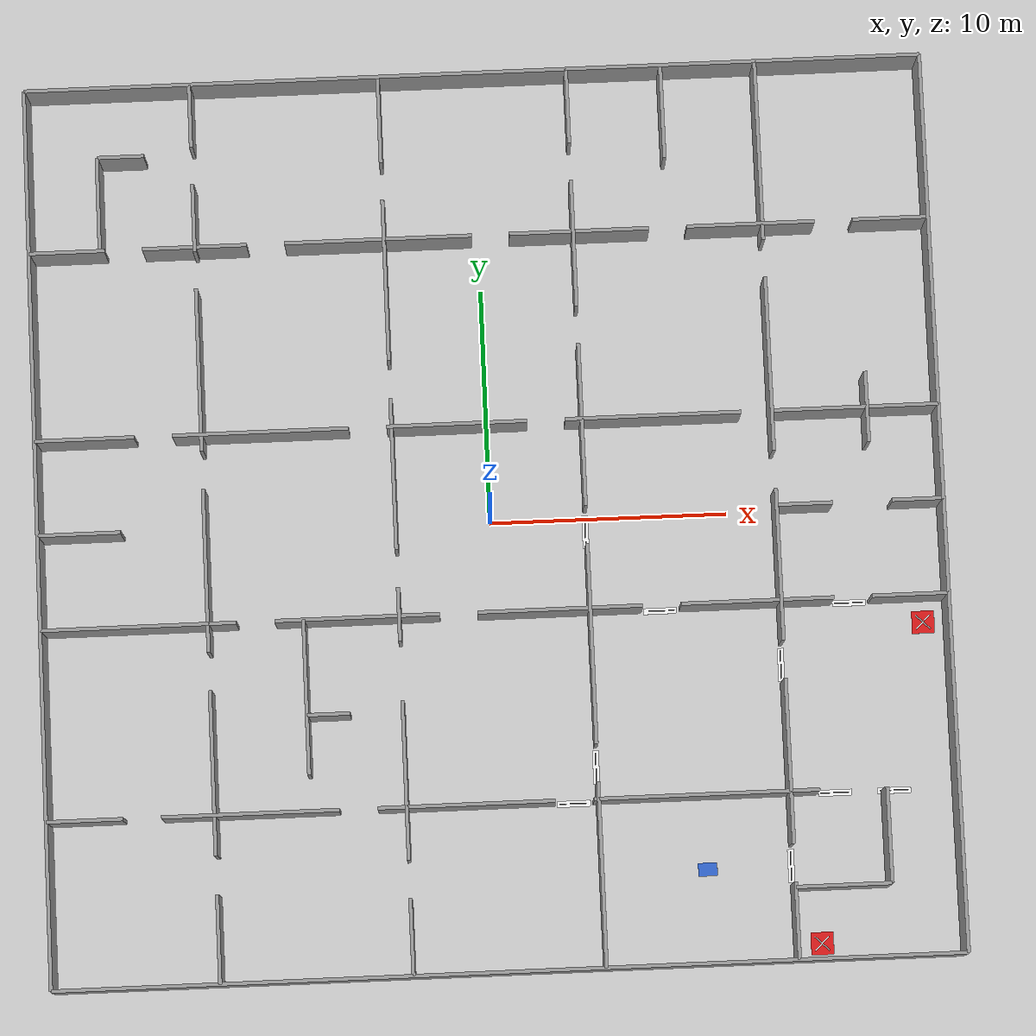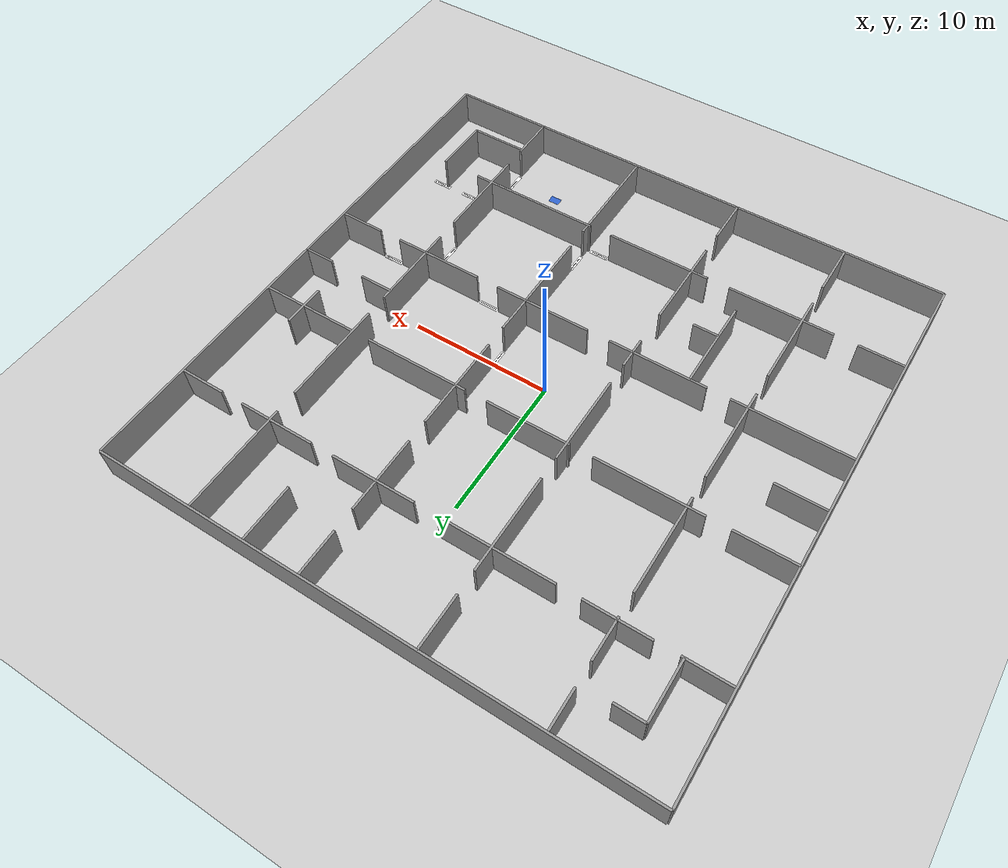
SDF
<sdf version="1.7">
 <world name="default">
  <model name="ground_plane">
   <static>1</static>
   <link name="link">
    <collision name="collision">
     <geometry><plane><normal>0 0 1</normal><size>100 100</size></plane></geometry>
     <surface><friction><ode><mu>100</mu><mu2>50</mu2></ode></friction></surface>
    </collision>
    <visual name="visual">
     <cast_shadows>0</cast_shadows>
     <geometry><plane><normal>0 0 1</normal><size>100 100</size></plane></geometry>
     <material>
      <script><uri>file://media/materials/scripts/gazebo.material</uri><name>Gazebo/Grey</name></script>
     </material>
    </visual>
   </link>
  </model>
  <model name="maze40">
   <static>1</static>
   <link name="Wall_0">
    <collision name="Wall_0_Collision">
     <geometry><box><size>38.000 0.150 2.500</size></box></geometry>
     <pose>0 0 1.250 0 0 0</pose>
    </collision>
    <visual name="Wall_0_Visual">
     <pose>0 0 1.250 0 0 0</pose>
     <geometry><box><size>38.000 0.150 2.500</size></box></geometry>
     <material>
      <script><uri>file://media/materials/scripts/gazebo.material</uri><name>Gazebo/Grey</name></script>
      <ambient>1 1 1 1</ambient>
     </material>
     <meta><layer>0</layer></meta>
    </visual>
    <pose>0.000 -19.000 0 0 0 0</pose>
   </link>
   <link name="Wall_1">
    <collision name="Wall_1_Collision">
     <geometry><box><size>38.000 0.150 2.500</size></box></geometry>
     <pose>0 0 1.250 0 0 0</pose>
    </collision>
    <visual name="Wall_1_Visual">
     <pose>0 0 1.250 0 0 0</pose>
     <geometry><box><size>38.000 0.150 2.500</size></box></geometry>
     <material>
      <script><uri>file://media/materials/scripts/gazebo.material</uri><name>Gazebo/Grey</name></script>
      <ambient>1 1 1 1</ambient>
     </material>
     <meta><layer>0</layer></meta>
    </visual>
    <pose>0.000 19.000 0 0 0 0</pose>
   </link>
   <link name="Wall_2">
    <collision name="Wall_2_Collision">
     <geometry><box><size>0.150 38.000 2.500</size></box></geometry>
     <pose>0 0 1.250 0 0 0</pose>
    </collision>
    <visual name="Wall_2_Visual">
     <pose>0 0 1.250 0 0 0</pose>
     <geometry><box><size>0.150 38.000 2.500</size></box></geometry>
     <material>
      <script><uri>file://media/materials/scripts/gazebo.material</uri><name>Gazebo/Grey</name></script>
      <ambient>1 1 1 1</ambient>
     </material>
     <meta><layer>0</layer></meta>
    </visual>
    <pose>-19.000 0.000 0 0 0 0</pose>
   </link>
   <link name="Wall_3">
    <collision name="Wall_3_Collision">
     <geometry><box><size>0.150 38.000 2.500</size></box></geometry>
     <pose>0 0 1.250 0 0 0</pose>
    </collision>
    <visual name="Wall_3_Visual">
     <pose>0 0 1.250 0 0 0</pose>
     <geometry><box><size>0.150 38.000 2.500</size></box></geometry>
     <material>
      <script><uri>file://media/materials/scripts/gazebo.material</uri><name>Gazebo/Grey</name></script>
      <ambient>1 1 1 1</ambient>
     </material>
     <meta><layer>0</layer></meta>
    </visual>
    <pose>19.000 0.000 0 0 0 0</pose>
   </link>
   <link name="Wall_4">
    <collision name="Wall_4_Collision">
     <geometry><box><size>0.150 3.700 2.500</size></box></geometry>
     <pose>0 0 1.250 0 0 0</pose>
    </collision>
    <visual name="Wall_4_Visual">
     <pose>0 0 1.250 0 0 0</pose>
     <geometry><box><size>0.150 3.700 2.500</size></box></geometry>
     <material>
      <script><uri>file://media/materials/scripts/gazebo.material</uri><name>Gazebo/Grey</name></script>
      <ambient>1 1 1 1</ambient>
     </material>
     <meta><layer>0</layer></meta>
    </visual>
    <pose>-12.000 -17.150 0 0 0 0</pose>
   </link>
   <link name="Wall_5">
    <collision name="Wall_5_Collision">
     <geometry><box><size>0.150 6.900 2.500</size></box></geometry>
     <pose>0 0 1.250 0 0 0</pose>
    </collision>
    <visual name="Wall_5_Visual">
     <pose>0 0 1.250 0 0 0</pose>
     <geometry><box><size>0.150 6.900 2.500</size></box></geometry>
     <material>
      <script><uri>file://media/materials/scripts/gazebo.material</uri><name>Gazebo/Grey</name></script>
      <ambient>1 1 1 1</ambient>
     </material>
     <meta><layer>0</layer></meta>
    </visual>
    <pose>-12.000 -10.250 0 0 0 0</pose>
   </link>
   <link name="Wall_6">
    <collision name="Wall_6_Collision">
     <geometry><box><size>0.150 6.900 2.500</size></box></geometry>
     <pose>0 0 1.250 0 0 0</pose>
    </collision>
    <visual name="Wall_6_Visual">
     <pose>0 0 1.250 0 0 0</pose>
     <geometry><box><size>0.150 6.900 2.500</size></box></geometry>
     <material>
      <script><uri>file://media/materials/scripts/gazebo.material</uri><name>Gazebo/Grey</name></script>
      <ambient>1 1 1 1</ambient>
     </material>
     <meta><layer>0</layer></meta>
    </visual>
    <pose>-12.000 -1.750 0 0 0 0</pose>
   </link>
   <link name="Wall_7">
    <collision name="Wall_7_Collision">
     <geometry><box><size>0.150 6.900 2.500</size></box></geometry>
     <pose>0 0 1.250 0 0 0</pose>
    </collision>
    <visual name="Wall_7_Visual">
     <pose>0 0 1.250 0 0 0</pose>
     <geometry><box><size>0.150 6.900 2.500</size></box></geometry>
     <material>
      <script><uri>file://media/materials/scripts/gazebo.material</uri><name>Gazebo/Grey</name></script>
      <ambient>1 1 1 1</ambient>
     </material>
     <meta><layer>0</layer></meta>
    </visual>
    <pose>-12.000 6.750 0 0 0 0</pose>
   </link>
   <link name="Wall_8">
    <collision name="Wall_8_Collision">
     <geometry><box><size>0.150 2.900 2.500</size></box></geometry>
     <pose>0 0 1.250 0 0 0</pose>
    </collision>
    <visual name="Wall_8_Visual">
     <pose>0 0 1.250 0 0 0</pose>
     <geometry><box><size>0.150 2.900 2.500</size></box></geometry>
     <material>
      <script><uri>file://media/materials/scripts/gazebo.material</uri><name>Gazebo/Grey</name></script>
      <ambient>1 1 1 1</ambient>
     </material>
     <meta><layer>0</layer></meta>
    </visual>
    <pose>-12.000 13.250 0 0 0 0</pose>
   </link>
   <link name="Wall_9">
    <collision name="Wall_9_Collision">
     <geometry><box><size>0.150 2.700 2.500</size></box></geometry>
     <pose>0 0 1.250 0 0 0</pose>
    </collision>
    <visual name="Wall_9_Visual">
     <pose>0 0 1.250 0 0 0</pose>
     <geometry><box><size>0.150 2.700 2.500</size></box></geometry>
     <material>
      <script><uri>file://media/materials/scripts/gazebo.material</uri><name>Gazebo/Grey</name></script>
      <ambient>1 1 1 1</ambient>
     </material>
     <meta><layer>0</layer></meta>
    </visual>
    <pose>-12.000 17.650 0 0 0 0</pose>
   </link>
   <link name="Wall_10">
    <collision name="Wall_10_Collision">
     <geometry><box><size>0.150 3.200 2.500</size></box></geometry>
     <pose>0 0 1.250 0 0 0</pose>
    </collision>
    <visual name="Wall_10_Visual">
     <pose>0 0 1.250 0 0 0</pose>
     <geometry><box><size>0.150 3.200 2.500</size></box></geometry>
     <material>
      <script><uri>file://media/materials/scripts/gazebo.material</uri><name>Gazebo/Grey</name></script>
      <ambient>1 1 1 1</ambient>
     </material>
     <meta><layer>0</layer></meta>
    </visual>
    <pose>-4.000 -17.400 0 0 0 0</pose>
   </link>
   <link name="Wall_11">
    <collision name="Wall_11_Collision">
     <geometry><box><size>0.150 6.650 2.500</size></box></geometry>
     <pose>0 0 1.250 0 0 0</pose>
    </collision>
    <visual name="Wall_11_Visual">
     <pose>0 0 1.250 0 0 0</pose>
     <geometry><box><size>0.150 6.650 2.500</size></box></geometry>
     <material>
      <script><uri>file://media/materials/scripts/gazebo.material</uri><name>Gazebo/Grey</name></script>
      <ambient>1 1 1 1</ambient>
     </material>
     <meta><layer>0</layer></meta>
    </visual>
    <pose>-4.000 -10.875 0 0 0 0</pose>
   </link>
   <link name="Wall_11b">
    <collision name="Wall_11b_Collision">
     <geometry><box><size>0.150 2.250 2.500</size></box></geometry>
     <pose>0 0 1.250 0 0 0</pose>
    </collision>
    <visual name="Wall_11b_Visual">
     <pose>0 0 1.250 0 0 0</pose>
     <geometry><box><size>0.150 2.250 2.500</size></box></geometry>
     <material>
      <script><uri>file://media/materials/scripts/gazebo.material</uri><name>Gazebo/Grey</name></script>
      <ambient>1 1 1 1</ambient>
     </material>
     <meta><layer>0</layer></meta>
    </visual>
    <pose>-4.000 -3.925 0 0 0 0</pose>
   </link>
   <link name="Wall_12">
    <collision name="Wall_12_Collision">
     <geometry><box><size>0.150 6.400 2.500</size></box></geometry>
     <pose>0 0 1.250 0 0 0</pose>
    </collision>
    <visual name="Wall_12_Visual">
     <pose>0 0 1.250 0 0 0</pose>
     <geometry><box><size>0.150 6.400 2.500</size></box></geometry>
     <material>
      <script><uri>file://media/materials/scripts/gazebo.material</uri><name>Gazebo/Grey</name></script>
      <ambient>1 1 1 1</ambient>
     </material>
     <meta><layer>0</layer></meta>
    </visual>
    <pose>-4.000 2.000 0 0 0 0</pose>
   </link>
   <link name="Wall_13">
    <collision name="Wall_13_Collision">
     <geometry><box><size>0.150 6.900 2.500</size></box></geometry>
     <pose>0 0 1.250 0 0 0</pose>
    </collision>
    <visual name="Wall_13_Visual">
     <pose>0 0 1.250 0 0 0</pose>
     <geometry><box><size>0.150 6.900 2.500</size></box></geometry>
     <material>
      <script><uri>file://media/materials/scripts/gazebo.material</uri><name>Gazebo/Grey</name></script>
      <ambient>1 1 1 1</ambient>
     </material>
     <meta><layer>0</layer></meta>
    </visual>
    <pose>-4.000 10.250 0 0 0 0</pose>
   </link>
   <link name="Wall_14">
    <collision name="Wall_14_Collision">
     <geometry><box><size>0.150 3.700 2.500</size></box></geometry>
     <pose>0 0 1.250 0 0 0</pose>
    </collision>
    <visual name="Wall_14_Visual">
     <pose>0 0 1.250 0 0 0</pose>
     <geometry><box><size>0.150 3.700 2.500</size></box></geometry>
     <material>
      <script><uri>file://media/materials/scripts/gazebo.material</uri><name>Gazebo/Grey</name></script>
      <ambient>1 1 1 1</ambient>
     </material>
     <meta><layer>0</layer></meta>
    </visual>
    <pose>-4.000 17.150 0 0 0 0</pose>
   </link>
   <link name="Wall_15">
    <collision name="Wall_15_Collision">
     <geometry><box><size>0.150 7.700 2.500</size></box></geometry>
     <pose>0 0 1.250 0 0 0</pose>
    </collision>
    <visual name="Wall_15_Visual">
     <pose>0 0 1.250 0 0 0</pose>
     <geometry><box><size>0.150 7.700 2.500</size></box></geometry>
     <material>
      <script><uri>file://media/materials/scripts/gazebo.material</uri><name>Gazebo/Grey</name></script>
      <ambient>1 1 1 1</ambient>
     </material>
     <meta><layer>0</layer></meta>
    </visual>
    <pose>4.000 -15.150 0 0 0 0</pose>
   </link>
   <link name="Wall_16">
    <collision name="Wall_16_Collision">
     <geometry><box><size>0.150 8.400 2.500</size></box></geometry>
     <pose>0 0 1.250 0 0 0</pose>
    </collision>
    <visual name="Wall_16_Visual">
     <pose>0 0 1.250 0 0 0</pose>
     <geometry><box><size>0.150 8.400 2.500</size></box></geometry>
     <material>
      <script><uri>file://media/materials/scripts/gazebo.material</uri><name>Gazebo/Grey</name></script>
      <ambient>1 1 1 1</ambient>
     </material>
     <meta><layer>0</layer></meta>
    </visual>
    <pose>4.000 -5.500 0 0 0 0</pose>
   </link>
   <link name="Wall_17">
    <collision name="Wall_17_Collision">
     <geometry><box><size>0.150 6.900 2.500</size></box></geometry>
     <pose>0 0 1.250 0 0 0</pose>
    </collision>
    <visual name="Wall_17_Visual">
     <pose>0 0 1.250 0 0 0</pose>
     <geometry><box><size>0.150 6.900 2.500</size></box></geometry>
     <material>
      <script><uri>file://media/materials/scripts/gazebo.material</uri><name>Gazebo/Grey</name></script>
      <ambient>1 1 1 1</ambient>
     </material>
     <meta><layer>0</layer></meta>
    </visual>
    <pose>4.000 3.750 0 0 0 0</pose>
   </link>
   <link name="Wall_18">
    <collision name="Wall_18_Collision">
     <geometry><box><size>0.150 5.400 2.500</size></box></geometry>
     <pose>0 0 1.250 0 0 0</pose>
    </collision>
    <visual name="Wall_18_Visual">
     <pose>0 0 1.250 0 0 0</pose>
     <geometry><box><size>0.150 5.400 2.500</size></box></geometry>
     <material>
      <script><uri>file://media/materials/scripts/gazebo.material</uri><name>Gazebo/Grey</name></script>
      <ambient>1 1 1 1</ambient>
     </material>
     <meta><layer>0</layer></meta>
    </visual>
    <pose>4.000 11.500 0 0 0 0</pose>
   </link>
   <link name="Wall_19">
    <collision name="Wall_19_Collision">
     <geometry><box><size>0.150 3.200 2.500</size></box></geometry>
     <pose>0 0 1.250 0 0 0</pose>
    </collision>
    <visual name="Wall_19_Visual">
     <pose>0 0 1.250 0 0 0</pose>
     <geometry><box><size>0.150 3.200 2.500</size></box></geometry>
     <material>
      <script><uri>file://media/materials/scripts/gazebo.material</uri><name>Gazebo/Grey</name></script>
      <ambient>1 1 1 1</ambient>
     </material>
     <meta><layer>0</layer></meta>
    </visual>
    <pose>4.000 17.400 0 0 0 0</pose>
   </link>
   <link name="Wall_20">
    <collision name="Wall_20_Collision">
     <geometry><box><size>0.150 3.200 2.500</size></box></geometry>
     <pose>0 0 1.250 0 0 0</pose>
    </collision>
    <visual name="Wall_20_Visual">
     <pose>0 0 1.250 0 0 0</pose>
     <geometry><box><size>0.150 3.200 2.500</size></box></geometry>
     <material>
      <script><uri>file://media/materials/scripts/gazebo.material</uri><name>Gazebo/Grey</name></script>
      <ambient>1 1 1 1</ambient>
     </material>
     <meta><layer>0</layer></meta>
    </visual>
    <pose>12.000 -17.400 0 0 0 0</pose>
   </link>
   <link name="Wall_21">
    <collision name="Wall_21_Collision">
     <geometry><box><size>0.150 6.900 2.500</size></box></geometry>
     <pose>0 0 1.250 0 0 0</pose>
    </collision>
    <visual name="Wall_21_Visual">
     <pose>0 0 1.250 0 0 0</pose>
     <geometry><box><size>0.150 6.900 2.500</size></box></geometry>
     <material>
      <script><uri>file://media/materials/scripts/gazebo.material</uri><name>Gazebo/Grey</name></script>
      <ambient>1 1 1 1</ambient>
     </material>
     <meta><layer>0</layer></meta>
    </visual>
    <pose>12.000 -10.750 0 0 0 0</pose>
   </link>
   <link name="Wall_22">
    <collision name="Wall_22_Collision">
     <geometry><box><size>0.150 6.400 2.500</size></box></geometry>
     <pose>0 0 1.250 0 0 0</pose>
    </collision>
    <visual name="Wall_22_Visual">
     <pose>0 0 1.250 0 0 0</pose>
     <geometry><box><size>0.150 6.400 2.500</size></box></geometry>
     <material>
      <script><uri>file://media/materials/scripts/gazebo.material</uri><name>Gazebo/Grey</name></script>
      <ambient>1 1 1 1</ambient>
     </material>
     <meta><layer>0</layer></meta>
    </visual>
    <pose>12.000 -2.500 0 0 0 0</pose>
   </link>
   <link name="Wall_23">
    <collision name="Wall_23_Collision">
     <geometry><box><size>0.150 7.400 2.500</size></box></geometry>
     <pose>0 0 1.250 0 0 0</pose>
    </collision>
    <visual name="Wall_23_Visual">
     <pose>0 0 1.250 0 0 0</pose>
     <geometry><box><size>0.150 7.400 2.500</size></box></geometry>
     <material>
      <script><uri>file://media/materials/scripts/gazebo.material</uri><name>Gazebo/Grey</name></script>
      <ambient>1 1 1 1</ambient>
     </material>
     <meta><layer>0</layer></meta>
    </visual>
    <pose>12.000 6.000 0 0 0 0</pose>
   </link>
   <link name="Wall_24">
    <collision name="Wall_24_Collision">
     <geometry><box><size>0.150 7.700 2.500</size></box></geometry>
     <pose>0 0 1.250 0 0 0</pose>
    </collision>
    <visual name="Wall_24_Visual">
     <pose>0 0 1.250 0 0 0</pose>
     <geometry><box><size>0.150 7.700 2.500</size></box></geometry>
     <material>
      <script><uri>file://media/materials/scripts/gazebo.material</uri><name>Gazebo/Grey</name></script>
      <ambient>1 1 1 1</ambient>
     </material>
     <meta><layer>0</layer></meta>
    </visual>
    <pose>12.000 15.150 0 0 0 0</pose>
   </link>
   <link name="Wall_25">
    <collision name="Wall_25_Collision">
     <geometry><box><size>3.200 0.150 2.500</size></box></geometry>
     <pose>0 0 1.250 0 0 0</pose>
    </collision>
    <visual name="Wall_25_Visual">
     <pose>0 0 1.250 0 0 0</pose>
     <geometry><box><size>3.200 0.150 2.500</size></box></geometry>
     <material>
      <script><uri>file://media/materials/scripts/gazebo.material</uri><name>Gazebo/Grey</name></script>
      <ambient>1 1 1 1</ambient>
     </material>
     <meta><layer>0</layer></meta>
    </visual>
    <pose>-17.400 -12.000 0 0 0 0</pose>
   </link>
   <link name="Wall_26">
    <collision name="Wall_26_Collision">
     <geometry><box><size>7.400 0.150 2.500</size></box></geometry>
     <pose>0 0 1.250 0 0 0</pose>
    </collision>
    <visual name="Wall_26_Visual">
     <pose>0 0 1.250 0 0 0</pose>
     <geometry><box><size>7.400 0.150 2.500</size></box></geometry>
     <material>
      <script><uri>file://media/materials/scripts/gazebo.material</uri><name>Gazebo/Grey</name></script>
      <ambient>1 1 1 1</ambient>
     </material>
     <meta><layer>0</layer></meta>
    </visual>
    <pose>-10.500 -12.000 0 0 0 0</pose>
   </link>
   <link name="Wall_27">
    <collision name="Wall_27_Collision">
     <geometry><box><size>7.400 0.150 2.500</size></box></geometry>
     <pose>0 0 1.250 0 0 0</pose>
    </collision>
    <visual name="Wall_27_Visual">
     <pose>0 0 1.250 0 0 0</pose>
     <geometry><box><size>7.400 0.150 2.500</size></box></geometry>
     <material>
      <script><uri>file://media/materials/scripts/gazebo.material</uri><name>Gazebo/Grey</name></script>
      <ambient>1 1 1 1</ambient>
     </material>
     <meta><layer>0</layer></meta>
    </visual>
    <pose>-1.500 -12.000 0 0 0 0</pose>
   </link>
   <link name="Wall_28">
    <collision name="Wall_28_Collision">
     <geometry><box><size>9.400 0.150 2.500</size></box></geometry>
     <pose>0 0 1.250 0 0 0</pose>
    </collision>
    <visual name="Wall_28_Visual">
     <pose>0 0 1.250 0 0 0</pose>
     <geometry><box><size>9.400 0.150 2.500</size></box></geometry>
     <material>
      <script><uri>file://media/materials/scripts/gazebo.material</uri><name>Gazebo/Grey</name></script>
      <ambient>1 1 1 1</ambient>
     </material>
     <meta><layer>0</layer></meta>
    </visual>
    <pose>8.500 -12.000 0 0 0 0</pose>
   </link>
   <link name="Wall_31">
    <collision name="Wall_31_Collision">
     <geometry><box><size>8.200 0.150 2.500</size></box></geometry>
     <pose>0 0 1.250 0 0 0</pose>
    </collision>
    <visual name="Wall_31_Visual">
     <pose>0 0 1.250 0 0 0</pose>
     <geometry><box><size>8.200 0.150 2.500</size></box></geometry>
     <material>
      <script><uri>file://media/materials/scripts/gazebo.material</uri><name>Gazebo/Grey</name></script>
      <ambient>1 1 1 1</ambient>
     </material>
     <meta><layer>0</layer></meta>
    </visual>
    <pose>-14.900 -4.000 0 0 0 0</pose>
   </link>
   <link name="Wall_32">
    <collision name="Wall_32_Collision">
     <geometry><box><size>6.900 0.150 2.500</size></box></geometry>
     <pose>0 0 1.250 0 0 0</pose>
    </collision>
    <visual name="Wall_32_Visual">
     <pose>0 0 1.250 0 0 0</pose>
     <geometry><box><size>6.900 0.150 2.500</size></box></geometry>
     <material>
      <script><uri>file://media/materials/scripts/gazebo.material</uri><name>Gazebo/Grey</name></script>
      <ambient>1 1 1 1</ambient>
     </material>
     <meta><layer>0</layer></meta>
    </visual>
    <pose>-5.750 -4.000 0 0 0 0</pose>
   </link>
   <link name="Wall_33">
    <collision name="Wall_33_Collision">
     <geometry><box><size>6.900 0.150 2.500</size></box></geometry>
     <pose>0 0 1.250 0 0 0</pose>
    </collision>
    <visual name="Wall_33_Visual">
     <pose>0 0 1.250 0 0 0</pose>
     <geometry><box><size>6.900 0.150 2.500</size></box></geometry>
     <material>
      <script><uri>file://media/materials/scripts/gazebo.material</uri><name>Gazebo/Grey</name></script>
      <ambient>1 1 1 1</ambient>
     </material>
     <meta><layer>0</layer></meta>
    </visual>
    <pose>2.750 -4.000 0 0 0 0</pose>
   </link>
   <link name="Wall_34">
    <collision name="Wall_34_Collision">
     <geometry><box><size>6.400 0.150 2.500</size></box></geometry>
     <pose>0 0 1.250 0 0 0</pose>
    </collision>
    <visual name="Wall_34_Visual">
     <pose>0 0 1.250 0 0 0</pose>
     <geometry><box><size>6.400 0.150 2.500</size></box></geometry>
     <material>
      <script><uri>file://media/materials/scripts/gazebo.material</uri><name>Gazebo/Grey</name></script>
      <ambient>1 1 1 1</ambient>
     </material>
     <meta><layer>0</layer></meta>
    </visual>
    <pose>11.000 -4.000 0 0 0 0</pose>
   </link>
   <link name="Wall_35">
    <collision name="Wall_35_Collision">
     <geometry><box><size>3.200 0.150 2.500</size></box></geometry>
     <pose>0 0 1.250 0 0 0</pose>
    </collision>
    <visual name="Wall_35_Visual">
     <pose>0 0 1.250 0 0 0</pose>
     <geometry><box><size>3.200 0.150 2.500</size></box></geometry>
     <material>
      <script><uri>file://media/materials/scripts/gazebo.material</uri><name>Gazebo/Grey</name></script>
      <ambient>1 1 1 1</ambient>
     </material>
     <meta><layer>0</layer></meta>
    </visual>
    <pose>17.400 -4.000 0 0 0 0</pose>
   </link>
   <link name="Wall_36">
    <collision name="Wall_36_Collision">
     <geometry><box><size>4.200 0.150 2.500</size></box></geometry>
     <pose>0 0 1.250 0 0 0</pose>
    </collision>
    <visual name="Wall_36_Visual">
     <pose>0 0 1.250 0 0 0</pose>
     <geometry><box><size>4.200 0.150 2.500</size></box></geometry>
     <material>
      <script><uri>file://media/materials/scripts/gazebo.material</uri><name>Gazebo/Grey</name></script>
      <ambient>1 1 1 1</ambient>
     </material>
     <meta><layer>0</layer></meta>
    </visual>
    <pose>-16.900 4.000 0 0 0 0</pose>
   </link>
   <link name="Wall_37">
    <collision name="Wall_37_Collision">
     <geometry><box><size>7.400 0.150 2.500</size></box></geometry>
     <pose>0 0 1.250 0 0 0</pose>
    </collision>
    <visual name="Wall_37_Visual">
     <pose>0 0 1.250 0 0 0</pose>
     <geometry><box><size>7.400 0.150 2.500</size></box></geometry>
     <material>
      <script><uri>file://media/materials/scripts/gazebo.material</uri><name>Gazebo/Grey</name></script>
      <ambient>1 1 1 1</ambient>
     </material>
     <meta><layer>0</layer></meta>
    </visual>
    <pose>-9.500 4.000 0 0 0 0</pose>
   </link>
   <link name="Wall_38">
    <collision name="Wall_38_Collision">
     <geometry><box><size>5.900 0.150 2.500</size></box></geometry>
     <pose>0 0 1.250 0 0 0</pose>
    </collision>
    <visual name="Wall_38_Visual">
     <pose>0 0 1.250 0 0 0</pose>
     <geometry><box><size>5.900 0.150 2.500</size></box></geometry>
     <material>
      <script><uri>file://media/materials/scripts/gazebo.material</uri><name>Gazebo/Grey</name></script>
      <ambient>1 1 1 1</ambient>
     </material>
     <meta><layer>0</layer></meta>
    </visual>
    <pose>-1.250 4.000 0 0 0 0</pose>
   </link>
   <link name="Wall_39">
    <collision name="Wall_39_Collision">
     <geometry><box><size>7.400 0.150 2.500</size></box></geometry>
     <pose>0 0 1.250 0 0 0</pose>
    </collision>
    <visual name="Wall_39_Visual">
     <pose>0 0 1.250 0 0 0</pose>
     <geometry><box><size>7.400 0.150 2.500</size></box></geometry>
     <material>
      <script><uri>file://media/materials/scripts/gazebo.material</uri><name>Gazebo/Grey</name></script>
      <ambient>1 1 1 1</ambient>
     </material>
     <meta><layer>0</layer></meta>
    </visual>
    <pose>7.000 4.000 0 0 0 0</pose>
   </link>
   <link name="Wall_40">
    <collision name="Wall_40_Collision">
     <geometry><box><size>6.925 0.150 2.500</size></box></geometry>
     <pose>0 0 1.250 0 0 0</pose>
    </collision>
    <visual name="Wall_40_Visual">
     <pose>0 0 1.250 0 0 0</pose>
     <geometry><box><size>6.925 0.150 2.500</size></box></geometry>
     <material>
      <script><uri>file://media/materials/scripts/gazebo.material</uri><name>Gazebo/Grey</name></script>
      <ambient>1 1 1 1</ambient>
     </material>
     <meta><layer>0</layer></meta>
    </visual>
    <pose>15.5375 4.000 0 0 0 0</pose>
   </link>
   <link name="Wall_41">
    <collision name="Wall_41_Collision">
     <geometry><box><size>3.200 0.150 2.500</size></box></geometry>
     <pose>0 0 1.250 0 0 0</pose>
    </collision>
    <visual name="Wall_41_Visual">
     <pose>0 0 1.250 0 0 0</pose>
     <geometry><box><size>3.200 0.150 2.500</size></box></geometry>
     <material>
      <script><uri>file://media/materials/scripts/gazebo.material</uri><name>Gazebo/Grey</name></script>
      <ambient>1 1 1 1</ambient>
     </material>
     <meta><layer>0</layer></meta>
    </visual>
    <pose>-17.400 12.000 0 0 0 0</pose>
   </link>
   <link name="Wall_42">
    <collision name="Wall_42_Collision">
     <geometry><box><size>4.400 0.150 2.500</size></box></geometry>
     <pose>0 0 1.250 0 0 0</pose>
    </collision>
    <visual name="Wall_42_Visual">
     <pose>0 0 1.250 0 0 0</pose>
     <geometry><box><size>4.400 0.150 2.500</size></box></geometry>
     <material>
      <script><uri>file://media/materials/scripts/gazebo.material</uri><name>Gazebo/Grey</name></script>
      <ambient>1 1 1 1</ambient>
     </material>
     <meta><layer>0</layer></meta>
    </visual>
    <pose>-12.000 12.000 0 0 0 0</pose>
   </link>
   <link name="Wall_43">
    <collision name="Wall_43_Collision">
     <geometry><box><size>7.900 0.150 2.500</size></box></geometry>
     <pose>0 0 1.250 0 0 0</pose>
    </collision>
    <visual name="Wall_43_Visual">
     <pose>0 0 1.250 0 0 0</pose>
     <geometry><box><size>7.900 0.150 2.500</size></box></geometry>
     <material>
      <script><uri>file://media/materials/scripts/gazebo.material</uri><name>Gazebo/Grey</name></script>
      <ambient>1 1 1 1</ambient>
     </material>
     <meta><layer>0</layer></meta>
    </visual>
    <pose>-4.250 12.000 0 0 0 0</pose>
   </link>
   <link name="Wall_44">
    <collision name="Wall_44_Collision">
     <geometry><box><size>5.900 0.150 2.500</size></box></geometry>
     <pose>0 0 1.250 0 0 0</pose>
    </collision>
    <visual name="Wall_44_Visual">
     <pose>0 0 1.250 0 0 0</pose>
     <geometry><box><size>5.900 0.150 2.500</size></box></geometry>
     <material>
      <script><uri>file://media/materials/scripts/gazebo.material</uri><name>Gazebo/Grey</name></script>
      <ambient>1 1 1 1</ambient>
     </material>
     <meta><layer>0</layer></meta>
    </visual>
    <pose>4.250 12.000 0 0 0 0</pose>
   </link>
   <link name="Wall_45">
    <collision name="Wall_45_Collision">
     <geometry><box><size>5.400 0.150 2.500</size></box></geometry>
     <pose>0 0 1.250 0 0 0</pose>
    </collision>
    <visual name="Wall_45_Visual">
     <pose>0 0 1.250 0 0 0</pose>
     <geometry><box><size>5.400 0.150 2.500</size></box></geometry>
     <material>
      <script><uri>file://media/materials/scripts/gazebo.material</uri><name>Gazebo/Grey</name></script>
      <ambient>1 1 1 1</ambient>
     </material>
     <meta><layer>0</layer></meta>
    </visual>
    <pose>11.500 12.000 0 0 0 0</pose>
   </link>
   <link name="Wall_46">
    <collision name="Wall_46_Collision">
     <geometry><box><size>3.200 0.150 2.500</size></box></geometry>
     <pose>0 0 1.250 0 0 0</pose>
    </collision>
    <visual name="Wall_46_Visual">
     <pose>0 0 1.250 0 0 0</pose>
     <geometry><box><size>3.200 0.150 2.500</size></box></geometry>
     <material>
      <script><uri>file://media/materials/scripts/gazebo.material</uri><name>Gazebo/Grey</name></script>
      <ambient>1 1 1 1</ambient>
     </material>
     <meta><layer>0</layer></meta>
    </visual>
    <pose>17.400 12.000 0 0 0 0</pose>
   </link>
   <link name="Wall_47">
    <collision name="Wall_47_Collision">
     <geometry><box><size>0.150 4.000 2.500</size></box></geometry>
     <pose>0 0 1.250 0 0 0</pose>
    </collision>
    <visual name="Wall_47_Visual">
     <pose>0 0 1.250 0 0 0</pose>
     <geometry><box><size>0.150 4.000 2.500</size></box></geometry>
     <material>
      <script><uri>file://media/materials/scripts/gazebo.material</uri><name>Gazebo/Grey</name></script>
      <ambient>1 1 1 1</ambient>
     </material>
     <meta><layer>0</layer></meta>
    </visual>
    <pose>-16.000 14.000 0 0 0 0</pose>
   </link>
   <link name="Wall_48">
    <collision name="Wall_48_Collision">
     <geometry><box><size>2.000 0.150 2.500</size></box></geometry>
     <pose>0 0 1.250 0 0 0</pose>
    </collision>
    <visual name="Wall_48_Visual">
     <pose>0 0 1.250 0 0 0</pose>
     <geometry><box><size>2.000 0.150 2.500</size></box></geometry>
     <material>
      <script><uri>file://media/materials/scripts/gazebo.material</uri><name>Gazebo/Grey</name></script>
      <ambient>1 1 1 1</ambient>
     </material>
     <meta><layer>0</layer></meta>
    </visual>
    <pose>-15.000 16.000 0 0 0 0</pose>
   </link>
   <link name="Wall_49">
    <collision name="Wall_49_Collision">
     <geometry><box><size>0.150 4.000 2.500</size></box></geometry>
     <pose>0 0 1.250 0 0 0</pose>
    </collision>
    <visual name="Wall_49_Visual">
     <pose>0 0 1.250 0 0 0</pose>
     <geometry><box><size>0.150 4.000 2.500</size></box></geometry>
     <material>
      <script><uri>file://media/materials/scripts/gazebo.material</uri><name>Gazebo/Grey</name></script>
      <ambient>1 1 1 1</ambient>
     </material>
     <meta><layer>0</layer></meta>
    </visual>
    <pose>16.000 -14.000 0 0 0 0</pose>
   </link>
   <link name="Wall_50">
    <collision name="Wall_50_Collision">
     <geometry><box><size>4.000 0.150 2.500</size></box></geometry>
     <pose>0 0 1.250 0 0 0</pose>
    </collision>
    <visual name="Wall_50_Visual">
     <pose>0 0 1.250 0 0 0</pose>
     <geometry><box><size>4.000 0.150 2.500</size></box></geometry>
     <material>
      <script><uri>file://media/materials/scripts/gazebo.material</uri><name>Gazebo/Grey</name></script>
      <ambient>1 1 1 1</ambient>
     </material>
     <meta><layer>0</layer></meta>
    </visual>
    <pose>14.000 -16.000 0 0 0 0</pose>
   </link>
   <link name="Wall_51">
    <collision name="Wall_51_Collision">
     <geometry><box><size>0.150 3.000 2.500</size></box></geometry>
     <pose>0 0 1.250 0 0 0</pose>
    </collision>
    <visual name="Wall_51_Visual">
     <pose>0 0 1.250 0 0 0</pose>
     <geometry><box><size>0.150 3.000 2.500</size></box></geometry>
     <material>
      <script><uri>file://media/materials/scripts/gazebo.material</uri><name>Gazebo/Grey</name></script>
      <ambient>1 1 1 1</ambient>
     </material>
     <meta><layer>0</layer></meta>
    </visual>
    <pose>16.000 4.000 0 0 0 0</pose>
   </link>
   <link name="Wall_52">
    <collision name="Wall_52_Collision">
     <geometry><box><size>3.500 0.150 2.500</size></box></geometry>
     <pose>0 0 1.250 0 0 0</pose>
    </collision>
    <visual name="Wall_52_Visual">
     <pose>0 0 1.250 0 0 0</pose>
     <geometry><box><size>3.500 0.150 2.500</size></box></geometry>
     <material>
      <script><uri>file://media/materials/scripts/gazebo.material</uri><name>Gazebo/Grey</name></script>
      <ambient>1 1 1 1</ambient>
     </material>
     <meta><layer>0</layer></meta>
    </visual>
    <pose>-17.250 0.000 0 0 0 0</pose>
   </link>
   <link name="Wall_53">
    <collision name="Wall_53_Collision">
     <geometry><box><size>2.350 0.150 2.500</size></box></geometry>
     <pose>0 0 1.250 0 0 0</pose>
    </collision>
    <visual name="Wall_53_Visual">
     <pose>0 0 1.250 0 0 0</pose>
     <geometry><box><size>2.350 0.150 2.500</size></box></geometry>
     <material>
      <script><uri>file://media/materials/scripts/gazebo.material</uri><name>Gazebo/Grey</name></script>
      <ambient>1 1 1 1</ambient>
     </material>
     <meta><layer>0</layer></meta>
    </visual>
    <pose>13.175 0.000 0 0 0 0</pose>
   </link>
   <link name="Wall_53b">
    <collision name="Wall_53b_Collision">
     <geometry><box><size>2.150 0.150 2.500</size></box></geometry>
     <pose>0 0 1.250 0 0 0</pose>
    </collision>
    <visual name="Wall_53b_Visual">
     <pose>0 0 1.250 0 0 0</pose>
     <geometry><box><size>2.150 0.150 2.500</size></box></geometry>
     <material>
      <script><uri>file://media/materials/scripts/gazebo.material</uri><name>Gazebo/Grey</name></script>
      <ambient>1 1 1 1</ambient>
     </material>
     <meta><layer>0</layer></meta>
    </visual>
    <pose>17.925 0.000 0 0 0 0</pose>
   </link>
   <link name="Wall_54">
    <collision name="Wall_54_Collision">
     <geometry><box><size>0.150 4.000 2.500</size></box></geometry>
     <pose>0 0 1.250 0 0 0</pose>
    </collision>
    <visual name="Wall_54_Visual">
     <pose>0 0 1.250 0 0 0</pose>
     <geometry><box><size>0.150 4.000 2.500</size></box></geometry>
     <material>
      <script><uri>file://media/materials/scripts/gazebo.material</uri><name>Gazebo/Grey</name></script>
      <ambient>1 1 1 1</ambient>
     </material>
     <meta><layer>0</layer></meta>
    </visual>
    <pose>8.000 17.000 0 0 0 0</pose>
   </link>
   <link name="Wall_56">
    <collision name="Wall_56_Collision">
     <geometry><box><size>0.150 6.500 2.500</size></box></geometry>
     <pose>0 0 1.250 0 0 0</pose>
    </collision>
    <visual name="Wall_56_Visual">
     <pose>0 0 1.250 0 0 0</pose>
     <geometry><box><size>0.150 6.500 2.500</size></box></geometry>
     <material>
      <script><uri>file://media/materials/scripts/gazebo.material</uri><name>Gazebo/Grey</name></script>
      <ambient>1 1 1 1</ambient>
     </material>
     <meta><layer>0</layer></meta>
    </visual>
    <pose>-8.000 -7.250 0 0 0 0</pose>
   </link>
   <link name="Wall_57">
    <collision name="Wall_57_Collision">
     <geometry><box><size>1.800 0.150 2.500</size></box></geometry>
     <pose>0 0 1.250 0 0 0</pose>
    </collision>
    <visual name="Wall_57_Visual">
     <pose>0 0 1.250 0 0 0</pose>
     <geometry><box><size>1.800 0.150 2.500</size></box></geometry>
     <material>
      <script><uri>file://media/materials/scripts/gazebo.material</uri><name>Gazebo/Grey</name></script>
      <ambient>1 1 1 1</ambient>
     </material>
     <meta><layer>0</layer></meta>
    </visual>
    <pose>-7.100 -8.000 0 0 0 0</pose>
   </link>
  </model>
  <model name="semantic_marker_door_9">
   <static>true</static>
   <pose>4.000 -10.500 0 0 0 1.5708</pose>
   <link name="link">
    <visual name="door_patch">
     <pose>0 0 0.005 0 0 0</pose>
     <geometry><box><size>1.40 0.26 0.010</size></box></geometry>
     <material><ambient>0.96 0.96 0.96 1</ambient><diffuse>0.96 0.96 0.96 1</diffuse></material>
    </visual>
    <visual name="door_center_line">
     <pose>0 0 0.011 0 0 0</pose>
     <geometry><box><size>1.22 0.03 0.005</size></box></geometry>
     <material><ambient>0.15 0.15 0.15 1</ambient><diffuse>0.15 0.15 0.15 1</diffuse></material>
    </visual>
   </link>
  </model>
  <model name="semantic_marker_door_10">
   <static>true</static>
   <pose>4.000 -0.500 0 0 0 1.5708</pose>
   <link name="link">
    <visual name="door_patch">
     <pose>0 0 0.005 0 0 0</pose>
     <geometry><box><size>1.40 0.26 0.010</size></box></geometry>
     <material><ambient>0.96 0.96 0.96 1</ambient><diffuse>0.96 0.96 0.96 1</diffuse></material>
    </visual>
    <visual name="door_center_line">
     <pose>0 0 0.011 0 0 0</pose>
     <geometry><box><size>1.22 0.03 0.005</size></box></geometry>
     <material><ambient>0.15 0.15 0.15 1</ambient><diffuse>0.15 0.15 0.15 1</diffuse></material>
    </visual>
   </link>
  </model>
  <model name="semantic_marker_door_13">
   <static>true</static>
   <pose>12.000 -15.000 0 0 0 1.5708</pose>
   <link name="link">
    <visual name="door_patch">
     <pose>0 0 0.005 0 0 0</pose>
     <geometry><box><size>1.40 0.26 0.010</size></box></geometry>
     <material><ambient>0.96 0.96 0.96 1</ambient><diffuse>0.96 0.96 0.96 1</diffuse></material>
    </visual>
    <visual name="door_center_line">
     <pose>0 0 0.011 0 0 0</pose>
     <geometry><box><size>1.22 0.03 0.005</size></box></geometry>
     <material><ambient>0.15 0.15 0.15 1</ambient><diffuse>0.15 0.15 0.15 1</diffuse></material>
    </visual>
   </link>
  </model>
  <model name="semantic_marker_door_14">
   <static>true</static>
   <pose>12.000 -6.500 0 0 0 1.5708</pose>
   <link name="link">
    <visual name="door_patch">
     <pose>0 0 0.005 0 0 0</pose>
     <geometry><box><size>1.40 0.26 0.010</size></box></geometry>
     <material><ambient>0.96 0.96 0.96 1</ambient><diffuse>0.96 0.96 0.96 1</diffuse></material>
    </visual>
    <visual name="door_center_line">
     <pose>0 0 0.011 0 0 0</pose>
     <geometry><box><size>1.22 0.03 0.005</size></box></geometry>
     <material><ambient>0.15 0.15 0.15 1</ambient><diffuse>0.15 0.15 0.15 1</diffuse></material>
    </visual>
   </link>
  </model>
  <model name="semantic_marker_door_19">
   <static>true</static>
   <pose>3.000 -12.000 0 0 0 0.0000</pose>
   <link name="link">
    <visual name="door_patch">
     <pose>0 0 0.005 0 0 0</pose>
     <geometry><box><size>1.40 0.26 0.010</size></box></geometry>
     <material><ambient>0.96 0.96 0.96 1</ambient><diffuse>0.96 0.96 0.96 1</diffuse></material>
    </visual>
    <visual name="door_center_line">
     <pose>0 0 0.011 0 0 0</pose>
     <geometry><box><size>1.22 0.03 0.005</size></box></geometry>
     <material><ambient>0.15 0.15 0.15 1</ambient><diffuse>0.15 0.15 0.15 1</diffuse></material>
    </visual>
   </link>
  </model>
  <model name="semantic_marker_door_20">
   <static>true</static>
   <pose>14.000 -12.000 0 0 0 0.0000</pose>
   <link name="link">
    <visual name="door_patch">
     <pose>0 0 0.005 0 0 0</pose>
     <geometry><box><size>1.40 0.26 0.010</size></box></geometry>
     <material><ambient>0.96 0.96 0.96 1</ambient><diffuse>0.96 0.96 0.96 1</diffuse></material>
    </visual>
    <visual name="door_center_line">
     <pose>0 0 0.011 0 0 0</pose>
     <geometry><box><size>1.22 0.03 0.005</size></box></geometry>
     <material><ambient>0.15 0.15 0.15 1</ambient><diffuse>0.15 0.15 0.15 1</diffuse></material>
    </visual>
   </link>
  </model>
  <model name="semantic_marker_door_21">
   <static>true</static>
   <pose>16.500 -12.000 0 0 0 0.0000</pose>
   <link name="link">
    <visual name="door_patch">
     <pose>0 0 0.005 0 0 0</pose>
     <geometry><box><size>1.40 0.26 0.010</size></box></geometry>
     <material><ambient>0.96 0.96 0.96 1</ambient><diffuse>0.96 0.96 0.96 1</diffuse></material>
    </visual>
    <visual name="door_center_line">
     <pose>0 0 0.011 0 0 0</pose>
     <geometry><box><size>1.22 0.03 0.005</size></box></geometry>
     <material><ambient>0.15 0.15 0.15 1</ambient><diffuse>0.15 0.15 0.15 1</diffuse></material>
    </visual>
   </link>
  </model>
  <model name="semantic_marker_door_24">
   <static>true</static>
   <pose>7.000 -4.000 0 0 0 0.0000</pose>
   <link name="link">
    <visual name="door_patch">
     <pose>0 0 0.005 0 0 0</pose>
     <geometry><box><size>1.40 0.26 0.010</size></box></geometry>
     <material><ambient>0.96 0.96 0.96 1</ambient><diffuse>0.96 0.96 0.96 1</diffuse></material>
    </visual>
    <visual name="door_center_line">
     <pose>0 0 0.011 0 0 0</pose>
     <geometry><box><size>1.22 0.03 0.005</size></box></geometry>
     <material><ambient>0.15 0.15 0.15 1</ambient><diffuse>0.15 0.15 0.15 1</diffuse></material>
    </visual>
   </link>
  </model>
  <model name="semantic_marker_door_25">
   <static>true</static>
   <pose>15.000 -4.000 0 0 0 0.0000</pose>
   <link name="link">
    <visual name="door_patch">
     <pose>0 0 0.005 0 0 0</pose>
     <geometry><box><size>1.40 0.26 0.010</size></box></geometry>
     <material><ambient>0.96 0.96 0.96 1</ambient><diffuse>0.96 0.96 0.96 1</diffuse></material>
    </visual>
    <visual name="door_center_line">
     <pose>0 0 0.011 0 0 0</pose>
     <geometry><box><size>1.22 0.03 0.005</size></box></geometry>
     <material><ambient>0.15 0.15 0.15 1</ambient><diffuse>0.15 0.15 0.15 1</diffuse></material>
    </visual>
   </link>
  </model>
  <model name="semantic_marker_dead_end_6">
   <static>true</static>
   <pose>13.150 -18.300 0 0 0 0.0000</pose>
   <link name="link">
    <visual name="dead_end_patch">
     <pose>0 0 0.005 0 0 0</pose>
     <geometry><box><size>0.95 0.95 0.010</size></box></geometry>
     <material><ambient>0.85 0.10 0.10 1</ambient><diffuse>0.85 0.10 0.10 1</diffuse></material>
    </visual>
    <visual name="cross_bar_a">
     <pose>0 0 0.011 0 0 0.78</pose>
     <geometry><box><size>0.83 0.05 0.005</size></box></geometry>
     <material><ambient>0.98 0.98 0.98 1</ambient><diffuse>0.98 0.98 0.98 1</diffuse></material>
    </visual>
    <visual name="cross_bar_b">
     <pose>0 0 0.011 0 0 -0.78</pose>
     <geometry><box><size>0.83 0.05 0.005</size></box></geometry>
     <material><ambient>0.98 0.98 0.98 1</ambient><diffuse>0.98 0.98 0.98 1</diffuse></material>
    </visual>
   </link>
  </model>
  <model name="semantic_marker_dead_end_7">
   <static>true</static>
   <pose>18.100 -4.950 0 0 0 0.0000</pose>
   <link name="link">
    <visual name="dead_end_patch">
     <pose>0 0 0.005 0 0 0</pose>
     <geometry><box><size>0.95 0.95 0.010</size></box></geometry>
     <material><ambient>0.85 0.10 0.10 1</ambient><diffuse>0.85 0.10 0.10 1</diffuse></material>
    </visual>
    <visual name="cross_bar_a">
     <pose>0 0 0.011 0 0 0.78</pose>
     <geometry><box><size>0.83 0.05 0.005</size></box></geometry>
     <material><ambient>0.98 0.98 0.98 1</ambient><diffuse>0.98 0.98 0.98 1</diffuse></material>
    </visual>
    <visual name="cross_bar_b">
     <pose>0 0 0.011 0 0 -0.78</pose>
     <geometry><box><size>0.83 0.05 0.005</size></box></geometry>
     <material><ambient>0.98 0.98 0.98 1</ambient><diffuse>0.98 0.98 0.98 1</diffuse></material>
    </visual>
   </link>
  </model>
  <model name="semantic_marker_water_5">
   <static>true</static>
   <pose>8.500 -15.000 0 0 0 0.0000</pose>
   <link name="link">
    <visual name="water_patch">
     <pose>0 0 0.005 0 0 0</pose>
     <geometry><box><size>0.80 0.55 0.010</size></box></geometry>
     <material>
      <ambient>0.10 0.35 0.85 0.82</ambient>
      <diffuse>0.10 0.35 0.85 0.82</diffuse>
      <specular>0.95 0.95 0.95 1</specular>
     </material>
    </visual>
   </link>
  </model>
 </world>
</sdf>
